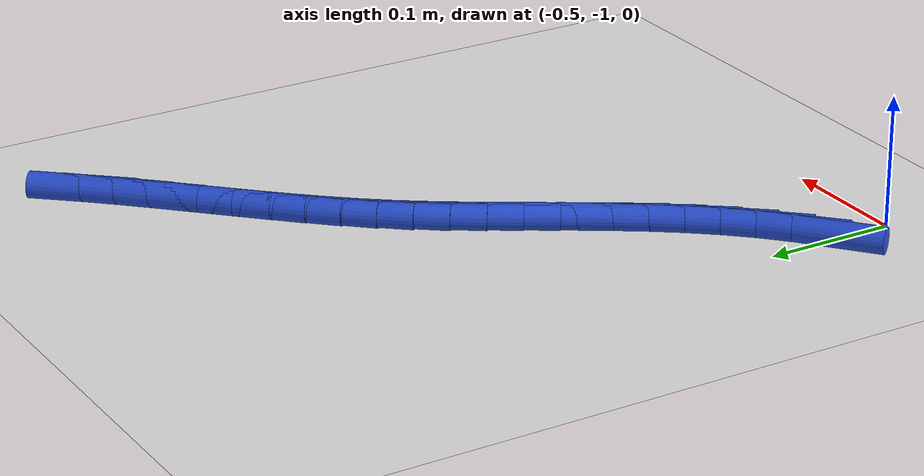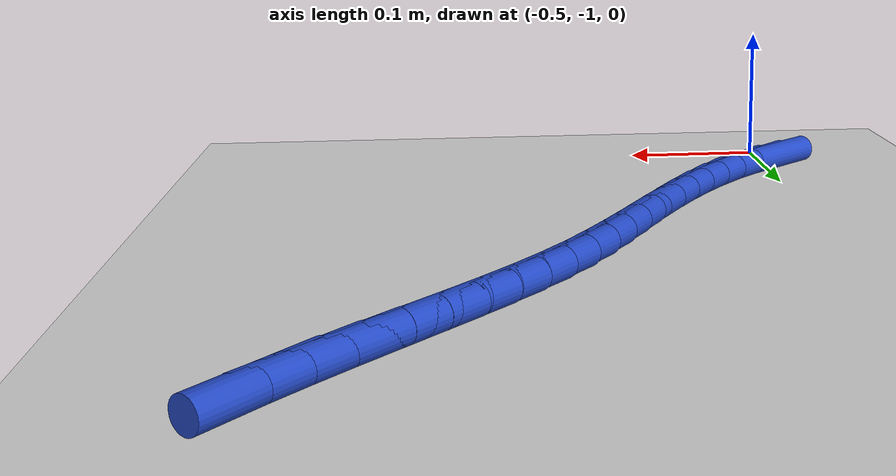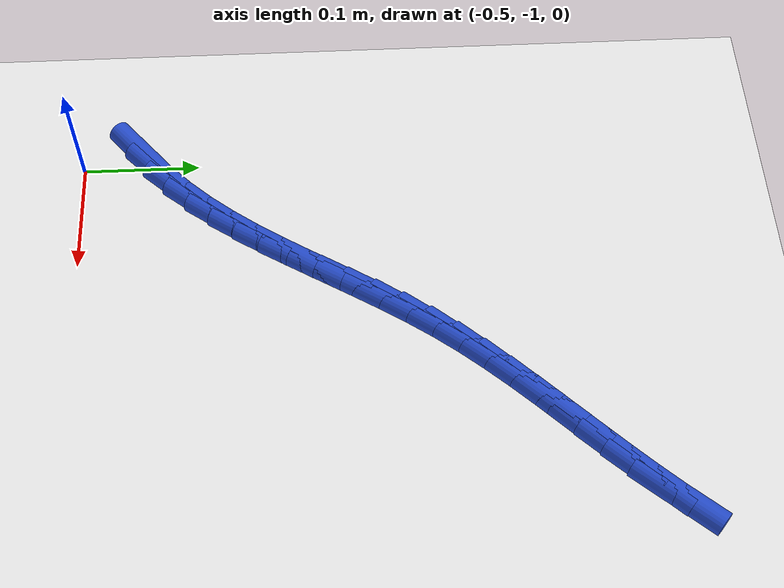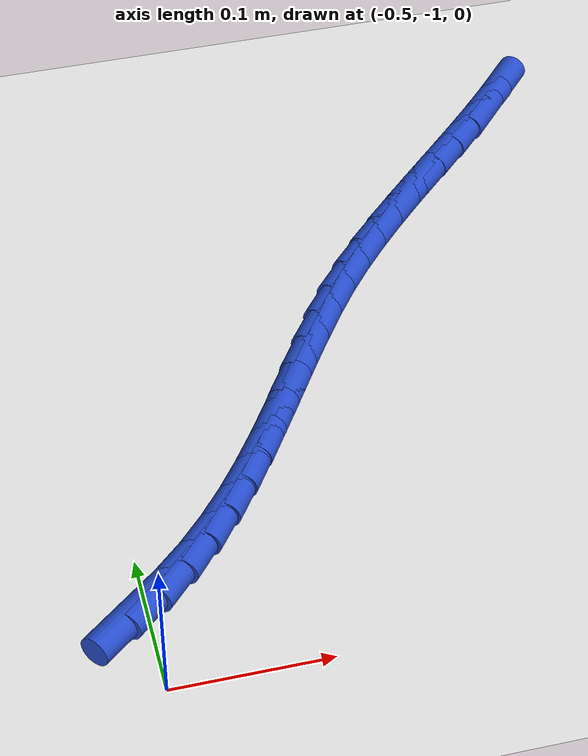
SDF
<sdf version="1.6">
 <world name="default">
  <model name="ground_plane">
   <static>1</static>
   <link name="link">
    <collision name="collision">
     <geometry><plane><normal>0 0 1</normal><size>100 100</size></plane></geometry>
     <surface><friction><ode><mu>100</mu><mu2>50</mu2></ode></friction></surface>
    </collision>
    <visual name="visual">
     <cast_shadows>0</cast_shadows>
     <geometry><plane><normal>0 0 1</normal><size>100 100</size></plane></geometry>
     <material>
      <script><uri>file://media/materials/scripts/gazebo.material</uri><name>Gazebo/WhiteGlow</name></script>
     </material>
    </visual>
   </link>
  </model>
  <model name="line">
   <link name="link_217">
    <pose>-0.505331496002491 -0.9452516108092641 0.01 0 1.57 0.6897572213224941</pose>
    <collision name="collision">
     <geometry><cylinder><radius>0.01</radius><length>0.08</length></cylinder></geometry>
    </collision>
    <visual name="visual">
     <material>
      <script><name>Gazebo/Blue</name><uri>file://media/materials/scripts/gazebo.material</uri></script>
     </material>
     <geometry><cylinder><radius>0.01</radius><length>0.08</length></cylinder></geometry>
    </visual>
   </link>
   <link name="link_218">
    <pose>-0.4852945367584547 -0.9287225614438561 0.01 0 1.57 0.7602189841059074</pose>
    <collision name="collision">
     <geometry><cylinder><radius>0.01</radius><length>0.08</length></cylinder></geometry>
    </collision>
    <visual name="visual">
     <material>
      <script><name>Gazebo/Blue</name><uri>file://media/materials/scripts/gazebo.material</uri></script>
     </material>
     <geometry><cylinder><radius>0.01</radius><length>0.08</length></cylinder></geometry>
    </visual>
   </link>
   <link name="link_219">
    <pose>-0.4666006539775785 -0.9109471399216155 0.01 0 1.57 0.8312711812276101</pose>
    <collision name="collision">
     <geometry><cylinder><radius>0.01</radius><length>0.08</length></cylinder></geometry>
    </collision>
    <visual name="visual">
     <material>
      <script><name>Gazebo/Blue</name><uri>file://media/materials/scripts/gazebo.material</uri></script>
     </material>
     <geometry><cylinder><radius>0.01</radius><length>0.08</length></cylinder></geometry>
    </visual>
   </link>
   <link name="link_220">
    <pose>-0.4493333647958451 -0.8920182574322552 0.01 0 1.57 0.8933462390460565</pose>
    <collision name="collision">
     <geometry><cylinder><radius>0.01</radius><length>0.08</length></cylinder></geometry>
    </collision>
    <visual name="visual">
     <material>
      <script><name>Gazebo/Blue</name><uri>file://media/materials/scripts/gazebo.material</uri></script>
     </material>
     <geometry><cylinder><radius>0.01</radius><length>0.08</length></cylinder></geometry>
    </visual>
   </link>
   <link name="link_221">
    <pose>-0.4333140655495172 -0.8721049672595771 0.01 0 1.57 0.9434938714314252</pose>
    <collision name="collision">
     <geometry><cylinder><radius>0.01</radius><length>0.08</length></cylinder></geometry>
    </collision>
    <visual name="visual">
     <material>
      <script><name>Gazebo/Blue</name><uri>file://media/materials/scripts/gazebo.material</uri></script>
     </material>
     <geometry><cylinder><radius>0.01</radius><length>0.08</length></cylinder></geometry>
    </visual>
   </link>
   <link name="link_222">
    <pose>-0.4182995788204109 -0.851395080378079 0.01 0 1.57 0.9814828068196663</pose>
    <collision name="collision">
     <geometry><cylinder><radius>0.01</radius><length>0.08</length></cylinder></geometry>
    </collision>
    <visual name="visual">
     <material>
      <script><name>Gazebo/Blue</name><uri>file://media/materials/scripts/gazebo.material</uri></script>
     </material>
     <geometry><cylinder><radius>0.01</radius><length>0.08</length></cylinder></geometry>
    </visual>
   </link>
   <link name="link_223">
    <pose>-0.40404672719034335 -0.8300764077622591 0.01 0 1.57 1.0073455764713648</pose>
    <collision name="collision">
     <geometry><cylinder><radius>0.01</radius><length>0.08</length></cylinder></geometry>
    </collision>
    <visual name="visual">
     <material>
      <script><name>Gazebo/Blue</name><uri>file://media/materials/scripts/gazebo.material</uri></script>
     </material>
     <geometry><cylinder><radius>0.01</radius><length>0.08</length></cylinder></geometry>
    </visual>
   </link>
   <link name="link_224">
    <pose>-0.390312333241131 -0.8083367603866155 0.01 0 1.57 1.0212109347507534</pose>
    <collision name="collision">
     <geometry><cylinder><radius>0.01</radius><length>0.08</length></cylinder></geometry>
    </collision>
    <visual name="visual">
     <material>
      <script><name>Gazebo/Blue</name><uri>file://media/materials/scripts/gazebo.material</uri></script>
     </material>
     <geometry><cylinder><radius>0.01</radius><length>0.08</length></cylinder></geometry>
    </visual>
   </link>
   <link name="link_225">
    <pose>-0.3768532195545909 -0.7863639492256462 0.01 0 1.57 1.0231910156224124</pose>
    <collision name="collision">
     <geometry><cylinder><radius>0.01</radius><length>0.08</length></cylinder></geometry>
    </collision>
    <visual name="visual">
     <material>
      <script><name>Gazebo/Blue</name><uri>file://media/materials/scripts/gazebo.material</uri></script>
     </material>
     <geometry><cylinder><radius>0.01</radius><length>0.08</length></cylinder></geometry>
    </visual>
   </link>
   <link name="link_226">
    <pose>-0.36342620871253967 -0.7643457852538497 0.01 0 1.57 1.013323039495027</pose>
    <collision name="collision">
     <geometry><cylinder><radius>0.01</radius><length>0.08</length></cylinder></geometry>
    </collision>
    <visual name="visual">
     <material>
      <script><name>Gazebo/Blue</name><uri>file://media/materials/scripts/gazebo.material</uri></script>
     </material>
     <geometry><cylinder><radius>0.01</radius><length>0.08</length></cylinder></geometry>
    </visual>
   </link>
   <link name="link_227">
    <pose>-0.3497881232967941 -0.7424700794457235 0.01 0 1.57 0.9915615709839017</pose>
    <collision name="collision">
     <geometry><cylinder><radius>0.01</radius><length>0.08</length></cylinder></geometry>
    </collision>
    <visual name="visual">
     <material>
      <script><name>Gazebo/Blue</name><uri>file://media/materials/scripts/gazebo.material</uri></script>
     </material>
     <geometry><cylinder><radius>0.01</radius><length>0.08</length></cylinder></geometry>
    </visual>
   </link>
   <link name="link_228">
    <pose>-0.335695785889171 -0.7209246427757663 0.01 0 1.57 0.9578199904072424</pose>
    <collision name="collision">
     <geometry><cylinder><radius>0.01</radius><length>0.08</length></cylinder></geometry>
    </collision>
    <visual name="visual">
     <material>
      <script><name>Gazebo/Blue</name><uri>file://media/materials/scripts/gazebo.material</uri></script>
     </material>
     <geometry><cylinder><radius>0.01</radius><length>0.08</length></cylinder></geometry>
    </visual>
   </link>
   <link name="link_229">
    <pose>-0.3209060190714868 -0.6998972862184759 0.01 0 1.57 0.9134164169359249</pose>
    <collision name="collision">
     <geometry><cylinder><radius>0.01</radius><length>0.08</length></cylinder></geometry>
    </collision>
    <visual name="visual">
     <material>
      <script><name>Gazebo/Blue</name><uri>file://media/materials/scripts/gazebo.material</uri></script>
     </material>
     <geometry><cylinder><radius>0.01</radius><length>0.08</length></cylinder></geometry>
    </visual>
   </link>
   <link name="link_230">
    <pose>-0.3052034935463665 -0.6795549914613813 0.01 0 1.57 0.8711697167654369</pose>
    <collision name="collision">
     <geometry><cylinder><radius>0.01</radius><length>0.08</length></cylinder></geometry>
    </collision>
    <visual name="visual">
     <material>
      <script><name>Gazebo/Blue</name><uri>file://media/materials/scripts/gazebo.material</uri></script>
     </material>
     <geometry><cylinder><radius>0.01</radius><length>0.08</length></cylinder></geometry>
    </visual>
   </link>
   <link name="link_231">
    <pose>-0.28863469800813024 -0.6598689107455428 0.01 0 1.57 0.838107838968267</pose>
    <collision name="collision">
     <geometry><cylinder><radius>0.01</radius><length>0.08</length></cylinder></geometry>
    </collision>
    <visual name="visual">
     <material>
      <script><name>Gazebo/Blue</name><uri>file://media/materials/scripts/gazebo.material</uri></script>
     </material>
     <geometry><cylinder><radius>0.01</radius><length>0.08</length></cylinder></geometry>
    </visual>
   </link>
   <link name="link_232">
    <pose>-0.2713896370563432 -0.6407028521218784 0.01 0 1.57 0.8142422081143358</pose>
    <collision name="collision">
     <geometry><cylinder><radius>0.01</radius><length>0.08</length></cylinder></geometry>
    </collision>
    <visual name="visual">
     <material>
      <script><name>Gazebo/Blue</name><uri>file://media/materials/scripts/gazebo.material</uri></script>
     </material>
     <geometry><cylinder><radius>0.01</radius><length>0.08</length></cylinder></geometry>
    </visual>
   </link>
   <link name="link_233">
    <pose>-0.2536597874253147 -0.6219195225430578 0.01 0 1.57 0.7994759299959198</pose>
    <collision name="collision">
     <geometry><cylinder><radius>0.01</radius><length>0.08</length></cylinder></geometry>
    </collision>
    <visual name="visual">
     <material>
      <script><name>Gazebo/Blue</name><uri>file://media/materials/scripts/gazebo.material</uri></script>
     </material>
     <geometry><cylinder><radius>0.01</radius><length>0.08</length></cylinder></geometry>
    </visual>
   </link>
   <link name="link_234">
    <pose>-0.235636625849354 -0.6033816289617511 0.01 0 1.57 0.7937348858701373</pose>
    <collision name="collision">
     <geometry><cylinder><radius>0.01</radius><length>0.08</length></cylinder></geometry>
    </collision>
    <visual name="visual">
     <material>
      <script><name>Gazebo/Blue</name><uri>file://media/materials/scripts/gazebo.material</uri></script>
     </material>
     <geometry><cylinder><radius>0.01</radius><length>0.08</length></cylinder></geometry>
    </visual>
   </link>
   <link name="link_235">
    <pose>-0.21751162906277025 -0.5849518783306276 0.01 0 1.57 0.7970034541189616</pose>
    <collision name="collision">
     <geometry><cylinder><radius>0.01</radius><length>0.08</length></cylinder></geometry>
    </collision>
    <visual name="visual">
     <material>
      <script><name>Gazebo/Blue</name><uri>file://media/materials/scripts/gazebo.material</uri></script>
     </material>
     <geometry><cylinder><radius>0.01</radius><length>0.08</length></cylinder></geometry>
    </visual>
   </link>
   <link name="link_236">
    <pose>-0.1994762737998722 -0.5664929776023567 0.01 0 1.57 0.8093385282422566</pose>
    <collision name="collision">
     <geometry><cylinder><radius>0.01</radius><length>0.08</length></cylinder></geometry>
    </collision>
    <visual name="visual">
     <material>
      <script><name>Gazebo/Blue</name><uri>file://media/materials/scripts/gazebo.material</uri></script>
     </material>
     <geometry><cylinder><radius>0.01</radius><length>0.08</length></cylinder></geometry>
    </visual>
   </link>
   <link name="link_237">
    <pose>-0.1817220367949702 -0.5478676337296096 0.01 0 1.57 0.8308626751295495</pose>
    <collision name="collision">
     <geometry><cylinder><radius>0.01</radius><length>0.08</length></cylinder></geometry>
    </collision>
    <visual name="visual">
     <material>
      <script><name>Gazebo/Blue</name><uri>file://media/materials/scripts/gazebo.material</uri></script>
     </material>
     <geometry><cylinder><radius>0.01</radius><length>0.08</length></cylinder></geometry>
    </visual>
   </link>
   <link name="link_238">
    <pose>-0.16444039478237282 -0.5289385536650548 0.01 0 1.57 0.8617351297555604</pose>
    <collision name="collision">
     <geometry><cylinder><radius>0.01</radius><length>0.08</length></cylinder></geometry>
    </collision>
    <visual name="visual">
     <material>
      <script><name>Gazebo/Blue</name><uri>file://media/materials/scripts/gazebo.material</uri></script>
     </material>
     <geometry><cylinder><radius>0.01</radius><length>0.08</length></cylinder></geometry>
    </visual>
   </link>
  </model>
 </world>
</sdf>
